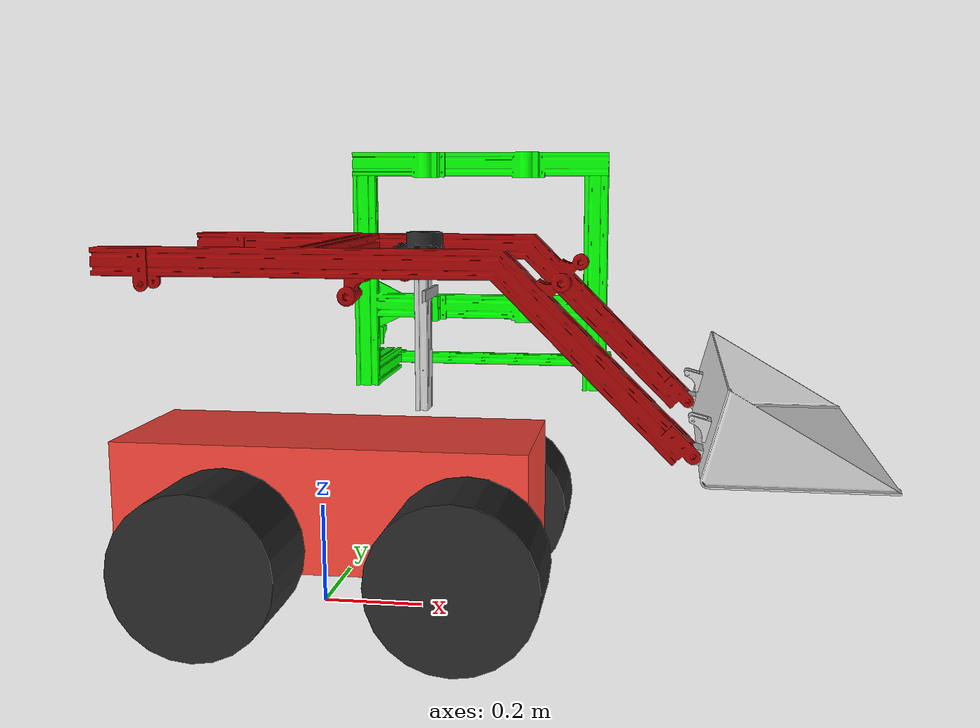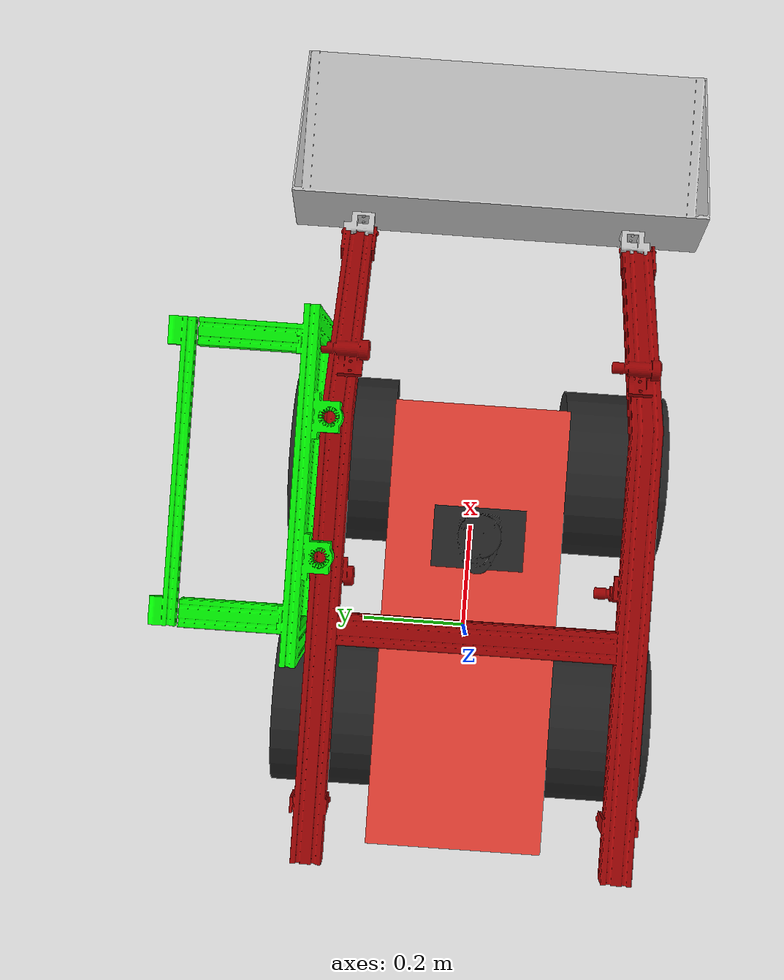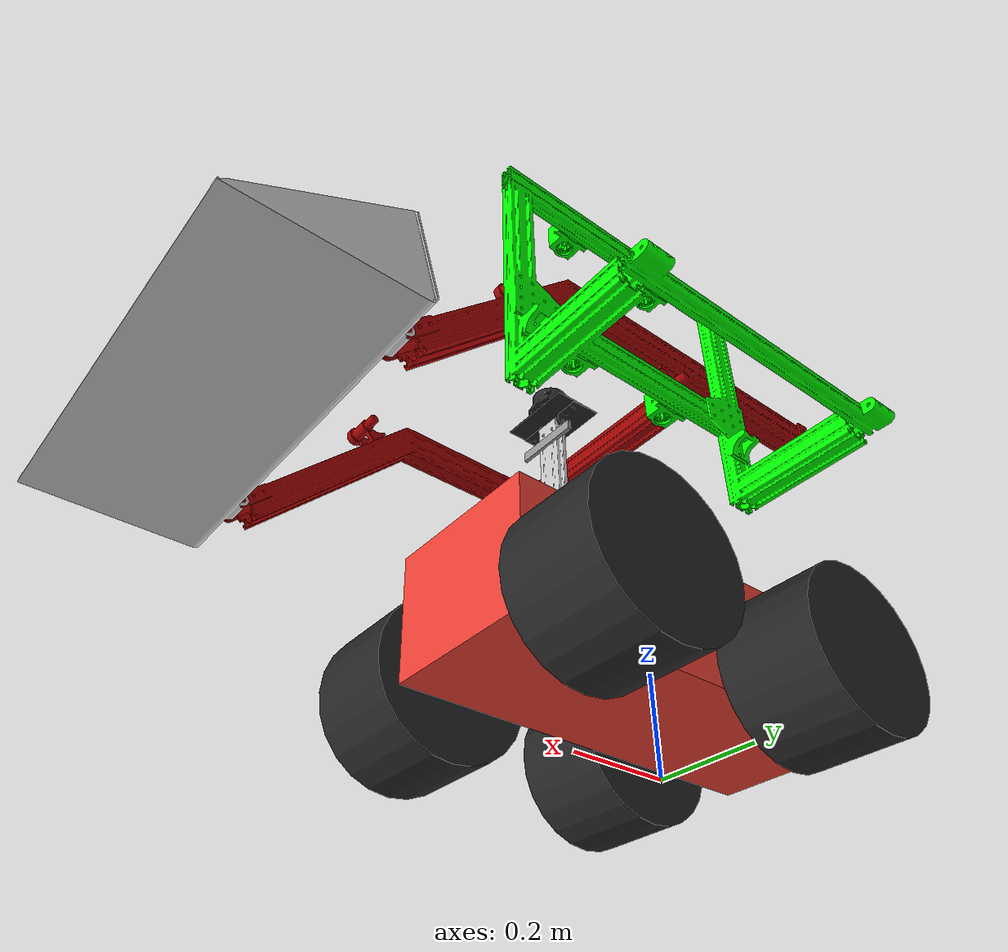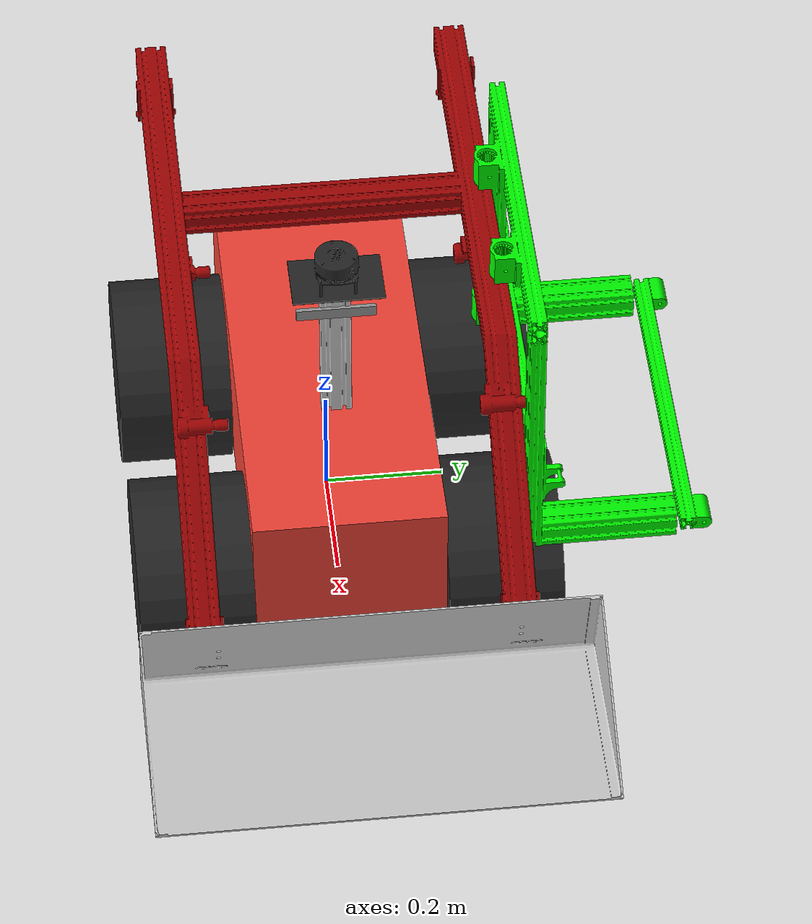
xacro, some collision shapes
<?xml version="1.0"?>
<robot name="emcee" xmlns:xacro="http://www.ros.org/wiki/xacro">
  <xacro:property name="PI" value="3.1415926535897931"/>

  <xacro:property name="wheelbase" value="0.262"/>
  <xacro:property name="track" value="0.37559"/>
  <xacro:property name="wheel_vertical_offset" value="0.0345"/>
  <xacro:property name="footprint_vertical_offset" value="-0.0655"/>

  <xacro:property name="wheel_radius" value="0.098"/>
  <xacro:property name="wheel_width" value="0.040"/>

  <xacro:property name="chassis_length" value="0.420"/>
  <xacro:property name="chassis_width" value="0.310"/>
  <xacro:property name="chassis_height" value="0.184"/>

  <xacro:property name="dummy_inertia" value="1e-09"/>

  <xacro:property name="mount_spacing" value="0.120"/>

  <material name="dark_grey"><color rgba="0.2 0.2 0.2 1.0"/></material>
  <material name="light_grey"><color rgba="0.4 0.4 0.4 1.0"/></material>
  <material name="stl"><color rgba="0.8 0.8 0.0 1.0"/></material>
  <material name="red"><color rgba="0.95 0.26 0.21 1.0"/></material>
  <material name="black"><color rgba="0.15 0.15 0.15 1.0"/></material>
  <material name="green"><color rgba="0 1 0 1"/></material>

  <xacro:property name="base_height" value="0.24765"/>
  <xacro:property name="base_width" value="0.3191"/>
  <xacro:property name="base_length" value="0.81"/>

  <xacro:property name="wheel_radius" value="0.156369"/>
  <xacro:property name="wheel_width" value="0.1905"/>
  <xacro:property name="wheel_location_from_back" value="0.2572"/>
  <xacro:property name="wheel_location_from_front" value="0.08255"/>
  <xacro:property name="wheel_height" value="0.047625"/>
  <xacro:property name="sled_width" value="0.50165"/>
  <xacro:property name="sled_length" value="0.5588"/>
  <xacro:property name="sled_height" value="0.03175"/>
  <xacro:property name="arm_block_width" value="0.5588"/>
  <xacro:property name="arm_block_height" value="0.250825"/>
  <xacro:property name="arm_block_depth" value="0.0508"/>
  <xacro:property name="sensor_mount_width" value="0.0508"/>
  <xacro:property name="sensor_mount_depth" value="0.0254"/>
  <xacro:property name="sensor_mount_height" value="0.3048"/>
  <xacro:property name="arm_primary_length_pivot" value="0.59055"/>
  <xacro:property name="arm_width" value="0.0505"/>
  <xacro:property name="arm_separation" value="0.5476875"/>
  <xacro:property name="arm_secondary_length" value="0.43815"/>
  <xacro:property name="bucket_width" value="0.7239"/>
  <xacro:property name="bucket_depth" value="0.3175"/>
  <xacro:property name="bucket_height" value="0.1651"/>
  <xacro:property name="arm_angle" value="0.8555"/>

  <!-- BUG: At slow velocities, the robot can't turn well; it starts skidding forward.  I think it has to do with the friction, inertia, whatever   -->
  <xacro:macro name="wheel" params="prefix reflect *joint_pose">
    <link name="${prefix}_wheel_link">
      <visual>
        <origin xyz="0 0 0" rpy="${PI/2} 0 0"/>
        <geometry>
          <cylinder radius="${wheel_radius}" length="${wheel_width}"/>
        </geometry>
        <material name="black"/>
      </visual>
      <collision>
        <origin xyz="0 0 0" rpy="${PI/2} 0 0"/>
        <geometry>
          <cylinder radius="${wheel_radius}" length="${wheel_width}"/>
        </geometry>
      </collision>
      <inertial>
        <origin xyz="0 0 0" rpy="0 0 0"/>
        <mass value="8.6"/>
        <!-- moment of inertia of a cylinder https://en.wikipedia.org/wiki/List_of_moments_of_inertia#List_of_3D_inertia_tensors -->
        <inertia ixx="0.0785782304" ixy="0" ixz="0" iyy="0.0785782304" iyz="0" izz="0.1051404359"/>
      </inertial>

    </link>

    <gazebo reference="${prefix}_wheel_link">
      <!-- TODO: set these constants. They are just taken from urdf_tutorial. 09 -->
      <mu1 value="5"/>
      <mu2 value="5"/>
      <max_vel>0.01</max_vel>
      <material>Gazebo/DarkGrey</material>
    </gazebo>

    <joint name="${prefix}_wheel" type="continuous">
      <parent link="chassis"/>
      <child link="${prefix}_wheel_link"/>
      <xacro:insert_block name="joint_pose"/>
      <axis xyz="0 ${reflect} 0"/>
    </joint>

    <transmission name="${prefix}_wheel_trans">
      <type>transmission_interface/SimpleTransmission</type>
      <joint name="${prefix}_wheel">
        <hardwareInterface>VelocityJointInterface</hardwareInterface>
      </joint>
      <actuator name="${prefix}_actuator">
        <mechanicalReduction>1</mechanicalReduction>
      </actuator>
    </transmission>
  </xacro:macro>

  <link name="base_link"></link>
  <joint name="chassis_base_joint" type="fixed">
    <parent link="base_link"/>
    <child link="chassis"/>
    <origin xyz="0 0 ${(base_height/2)+wheel_radius-wheel_height}"/>
  </joint>

  <link name="chassis">
    <visual>
      <origin xyz="0 0 0" rpy="0 0 0"/>
      <geometry>
        <mesh filename="package://emcee_description/meshes/visual/chassis.dae"/>
      </geometry>
      <material name="red"/>
    </visual>
    <collision>
      <origin xyz="0.03 0 0"/>
      <geometry>
        <box size="${base_length} ${base_width} ${base_height}"/>
      </geometry>
    </collision>
    <inertial>
      <origin xyz="0.1 0 0" rpy="0 0 0"/>
      <mass value="18.65"/>
      <inertia ixx="0.541922" ixy="2.8e-5" ixz="-0.01424" iyy="1.50291" iyz="0.000144" izz="1.71709"/>
    </inertial>
  </link>

  <!-- reflect is only used to set the wheel joints. it turned out that the right joints were oriented
  backwards. I don't know why this was different from other examples. -->
  <xacro:wheel prefix="left_front" reflect="1">
    <origin xyz="${(base_length/2)-(wheel_location_from_front)} ${(base_width/2)+(wheel_width/2)} ${-(base_height/2)+wheel_height}" rpy="0 0 0"/>
  </xacro:wheel>
  <xacro:wheel prefix="left_rear" reflect="1">
    <origin xyz="${-(base_length/2)+(wheel_location_from_back)} ${(base_width/2)+(wheel_width/2)} ${-(base_height/2)+wheel_height}" rpy="0 0 0"/>
  </xacro:wheel>
  <xacro:wheel prefix="right_front" reflect="-1">
    <origin xyz="${(base_length/2)-(wheel_location_from_front)} ${-(base_width/2)-(wheel_width/2)} ${-(base_height/2)+wheel_height}" rpy="${PI} 0 0"/>
  </xacro:wheel>
  <xacro:wheel prefix="right_rear" reflect="-1">
    <origin xyz="${-(base_length/2)+(wheel_location_from_back)} ${-(base_width/2)-(wheel_width/2)} ${-(base_height/2)+wheel_height}" rpy="${PI} 0 0"/>
  </xacro:wheel>

  <link name="sled">
    <visual>
      <geometry>
        <mesh filename="package://emcee_description/meshes/visual/sled.dae"/>
      </geometry>
      <origin xyz="0 0 0" rpy="0 0 0"/>
      <material name="green"/>
    </visual>
    <collision>
      <origin xyz="0 0 0"/>
      <geometry>
        <mesh filename="package://emcee_description/meshes/collision/sled_simple.dae"/>
      </geometry>
    </collision>
    <inertial>
      <origin xyz="0 0 0" rpy="0 0 0"/>
      <mass value="12.25"/>
      <inertia ixx="0.225942" ixy="-5.6e-5" ixz="0.041831" iyy="0.162776" iyz="4.5e-5" izz="0.312502"/>
    </inertial>
  </link>

  <joint name="sled_joint" type="prismatic">
    <parent link="chassis"/>
    <child link="sled"/>
    <axis rpy="0 0 0" xyz="1 0 0"/>
    <dynamics damping="100" friction="1"/>
    <limit effort="1000" lower="${-(base_length/2)-0.0508+(sled_width/2)}" upper="${(base_length/2)-0.0508-(sled_width/2)}" velocity="0.1"/>
    <origin rpy="0 0 0" xyz="0 0 ${(base_height/2)+0.04}"/>
  </joint>

  <link name="sensor_post">
    <visual>
      <geometry>
        <mesh filename="package://emcee_description/meshes/visual/sensor_post.dae"/>
      </geometry>
    </visual>
    <collision>
      <origin xyz="0 0 0"/>
      <geometry>
        <box size="${sensor_mount_depth} ${sensor_mount_width} ${sensor_mount_height}"/>
      </geometry>
    </collision>
    <inertial>
      <!-- xyz = 0.1365 0.11018 0.25799 -->
      <origin xyz="0 0 0" rpy="0 0 0"/>
      <mass value="0.421686"/>
      <inertia ixx="0.003291" ixy="-2e-6" ixz="0" iyy="0.00014" iyz="0" izz="0.003203"/>
    </inertial>
  </link>

  <joint name="sensor_post_joint" type="fixed">
    <parent link="sled"/>
    <child link="sensor_post"/>
    <origin rpy="0 0 0" xyz="${(sled_width/2) - (sensor_mount_depth/2) - 0.028575} 0 ${(sled_height/2) + (sensor_mount_height/2)}"/>
  </joint>

  <link name="ir_camera">
    <visual>
      <geometry>
        <box size="0.007 0.130 0.020"/>
      </geometry>
    </visual>
    <collision>
      <geometry>
        <box size="0.007 0.130 0.020"/>
      </geometry>
    </collision>
    <inertial>
      <origin xyz="0 0 0" rpy="0 0 0"/>
      <mass value="0.1"/>
      <inertia ixx="${dummy_inertia}" ixy="0" ixz="0" iyy="${dummy_inertia}" iyz="0" izz="${dummy_inertia}"/>
    </inertial>
  </link>

  <joint name="ir_camera_joint" type="fixed">
    <parent link="sensor_post"/>
    <child link="ir_camera"/>
    <!-- TODO: get exact position -->
    <origin rpy="0 0 0" xyz="0.015 0 .07"/>
  </joint>

  <!-- TODO: fix joints -->
  <link name="laser">
    <visual>
      <origin xyz="0 0 0"/>
      <geometry >
        <mesh filename="package://emcee_description/meshes/visual/laser.dae"/>
      </geometry>
      <material name="black"/>
    </visual>
    <collision>
      <origin xyz="0 0 0"/>
      <geometry>
        <box size="0.08 0.1 0.1"/>
      </geometry>
    </collision>
    <inertial>
      <!-- xyz = "0.13726 0.267092 0.257687" -->
      <origin xyz="0 0 0" rpy="0 0 0"/>
      <mass value="0.193569"/>
      <inertia ixx="0.00021" ixy="1.4e-5" ixz="1e-6" iyy="0.000203" iyz="0" izz="0.00017"/>
    </inertial>
  </link>

  <joint name="laser_joint" type="fixed">
    <parent link="sensor_post"/>
    <child link="laser"/>
    <origin xyz="0 0 ${(sensor_mount_height/2)}" rpy="0 0 3.14159"/>
  </joint>

  <link name="arm">
    <visual>
      <origin xyz="0.01 -.01 .02"/>
      <geometry>
        <mesh filename="package://emcee_description/meshes/visual/arms.dae"/>
      </geometry>
    </visual>
    <collision>
      <origin xyz="0.01 -.01 .02"/>
      <geometry>
        <mesh filename="package://emcee_description/meshes/collision/arms_simple.dae"/>
      </geometry>
    </collision>
    <inertial>
      <!-- xyz="-0.024425 0.120927 -0.01018" -->
      <origin xyz="0.439315 0.004673 -0.035609" rpy="0 0 0"/>
      <mass value="6.14067"/>

      <inertia iyy="0.581471" ixy="6.6e-5" iyz="-3e-6" ixx="0.39687" ixz="-0.128097" izz="0.87075"/>

      <!-- from meshlab -->
<!-- multiply by mass, divide by volume? -->
    </inertial>
  </link>
  <joint name="arm_joint" type="revolute">
    <parent link="sled"/>
    <child link="arm"/>
    <origin xyz="-0.236 0 ${arm_block_height + 0.0255}"/>
    <axis xyz="0 1 0"/>
    <limit lower="-0.253177" upper="0.30918" effort="1000000" velocity="0.1"/>
    <dynamics damping="0.1" friction="0"/>
  </joint>

  <link name="bucket">
    <visual>
      <origin xyz="0.00 0 0.00"/>
      <geometry>
        <mesh filename="package://emcee_description/meshes/visual/bucket.dae"/>
        />
      </geometry>
    </visual>
    <collision>
      <origin xyz="0.00 0 0.00"/>
      <geometry>
        <mesh filename="package://emcee_description/meshes/collision/bucket_simple.dae"/>
      </geometry>
    </collision>
    <inertial>
      <!-- xyz="-0.304153 0.030822 -0.01735" -->
      <origin xyz="0.124844 -0.000416 0.002654" rpy="0 ${PI/7} 0"/>
      <mass value="3.92566"/>
      <inertia ixx="0.216901" ixy="0" ixz="-0.007835" iyy="0.042509" iyz="0" izz="0.243738"/>
    </inertial>
  </link>

  <joint name="bucket_joint" type="revolute">
    <parent link="arm"/>
    <child link="bucket"/>
    <axis xyz="0 1 0"/>
    <origin xyz=".965 0 -0.282"/>
    <limit lower="${-0.40}" upper="${3.14159/2}" effort="100000" velocity="1"/>
    <dynamics damping="0.1" friction="0"/>
  </joint>

  <link name="imu_link">
    <inertial>
      <mass value="0.001"/>
      <origin xyz="0 0 0" rpy="0 0 0"/>
      <inertia ixx="${dummy_inertia}" ixy="0.0" ixz="0.0" iyy="${dummy_inertia}" iyz="0.0" izz="${dummy_inertia}"/>
    </inertial>
  </link>
  <joint name="imu_joint" type="fixed">
    <parent link="chassis"/>
    <child link="imu_link"/>
  </joint>

  <!-- Bring in simulation data for Gazebo. -->
  <xacro:include filename="emcee.gazebo"/>

  <!-- wheel transmissions are done within the wheel macro. -->

  <transmission name="sled_trans">
    <type>transmission_interface/SimpleTransmission</type>
    <joint name="sled_joint">
      <hardwareInterface>EffortJointInterface</hardwareInterface>
    </joint>
    <actuator name="sled_linear_actuator">
      <hardwareInterface>EffortJointInterface</hardwareInterface>
      <mechanicalReduction>1</mechanicalReduction>
    </actuator>
  </transmission>

  <transmission name="arm_trans">
    <type>transmission_interface/SimpleTransmission</type>
    <joint name="arm_joint">
      <hardwareInterface>EffortJointInterface</hardwareInterface>
    </joint>
    <actuator name="arm_linear_actuators">
      <hardwareInterface>EffortJointInterface</hardwareInterface>
      <mechanicalReduction>1</mechanicalReduction>
    </actuator>
  </transmission>

  <transmission name="bucket_trans">
    <type>transmission_interface/SimpleTransmission</type>
    <joint name="bucket_joint">
      <hardwareInterface>EffortJointInterface</hardwareInterface>
    </joint>
    <actuator name="bucket_linear_actuator">
      <hardwareInterface>EffortJointInterface</hardwareInterface>
      <mechanicalReduction>1</mechanicalReduction>
    </actuator>
  </transmission>

</robot>

<!-- TODO: scale up the collision DAEs.  When I reduced the triangle count (complexity), the size of the shapes dimished.
The collisions should be bigger than reality.  -->
<!-- TODO: add macros to replace any hard coded values -->
